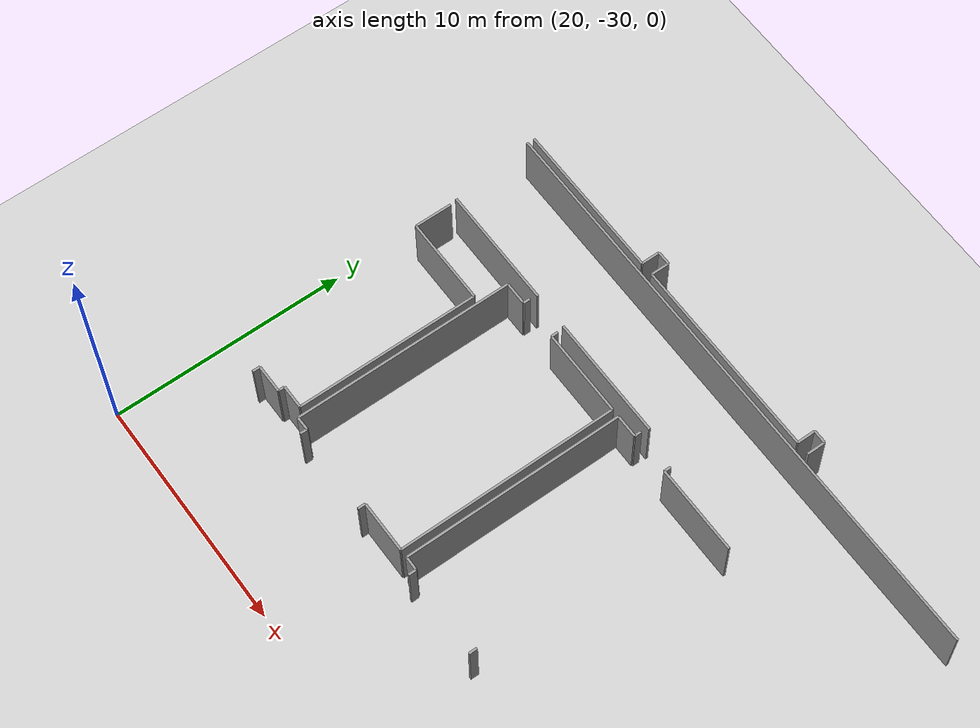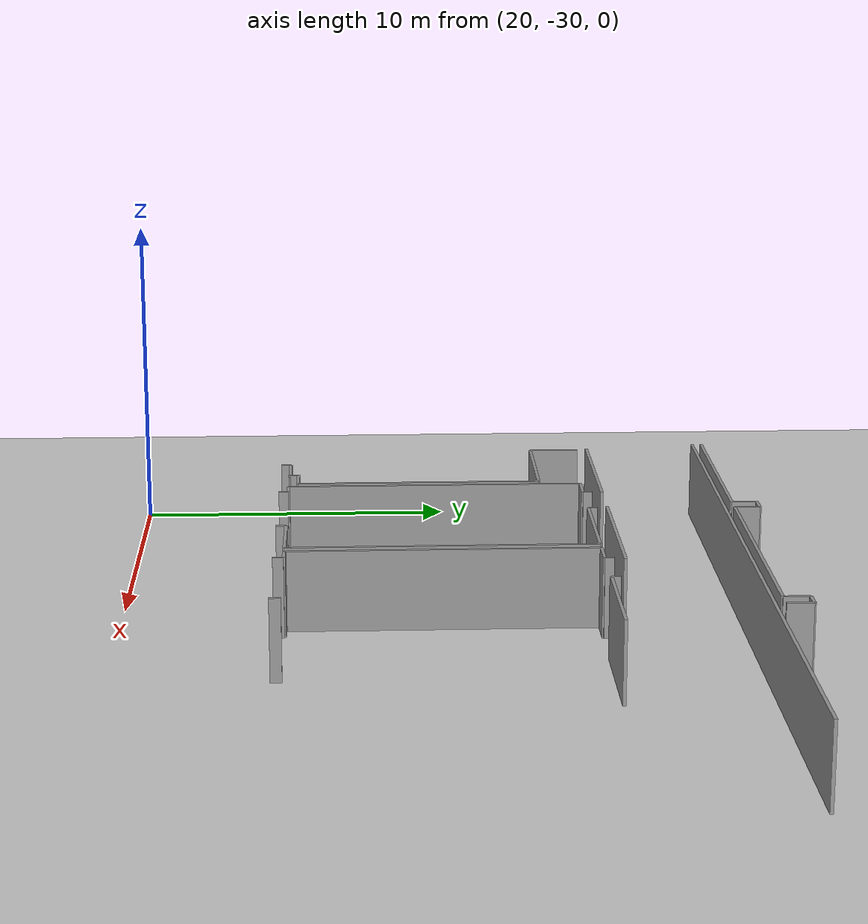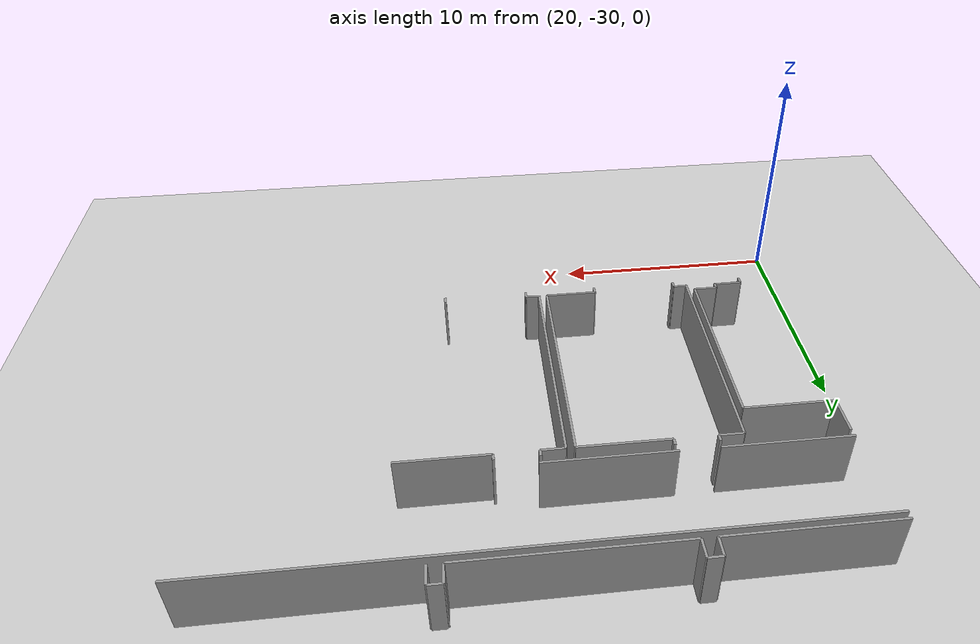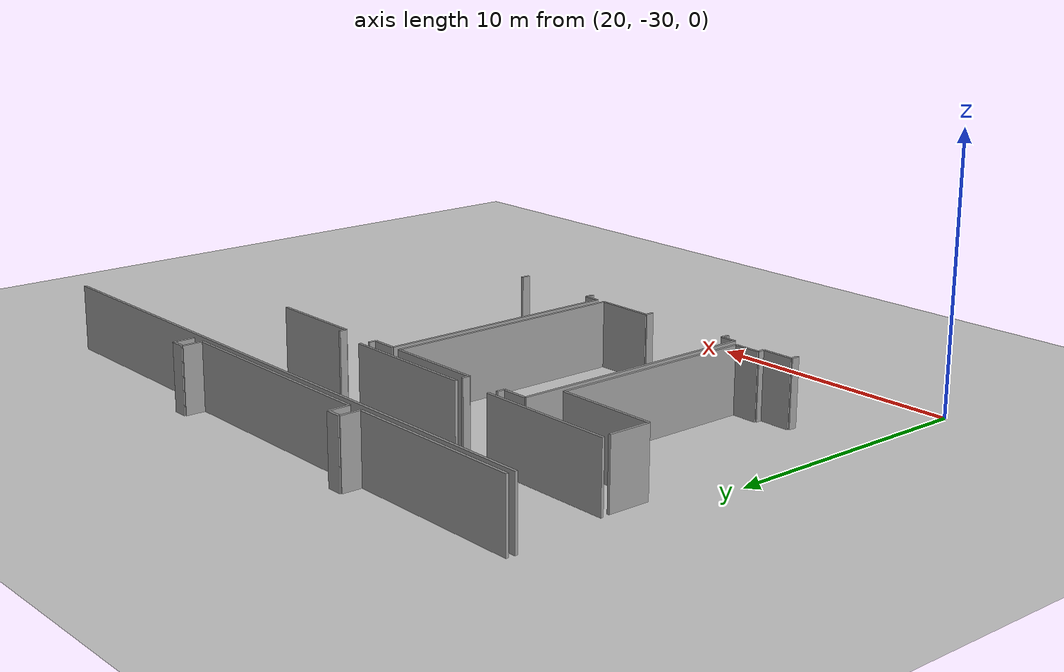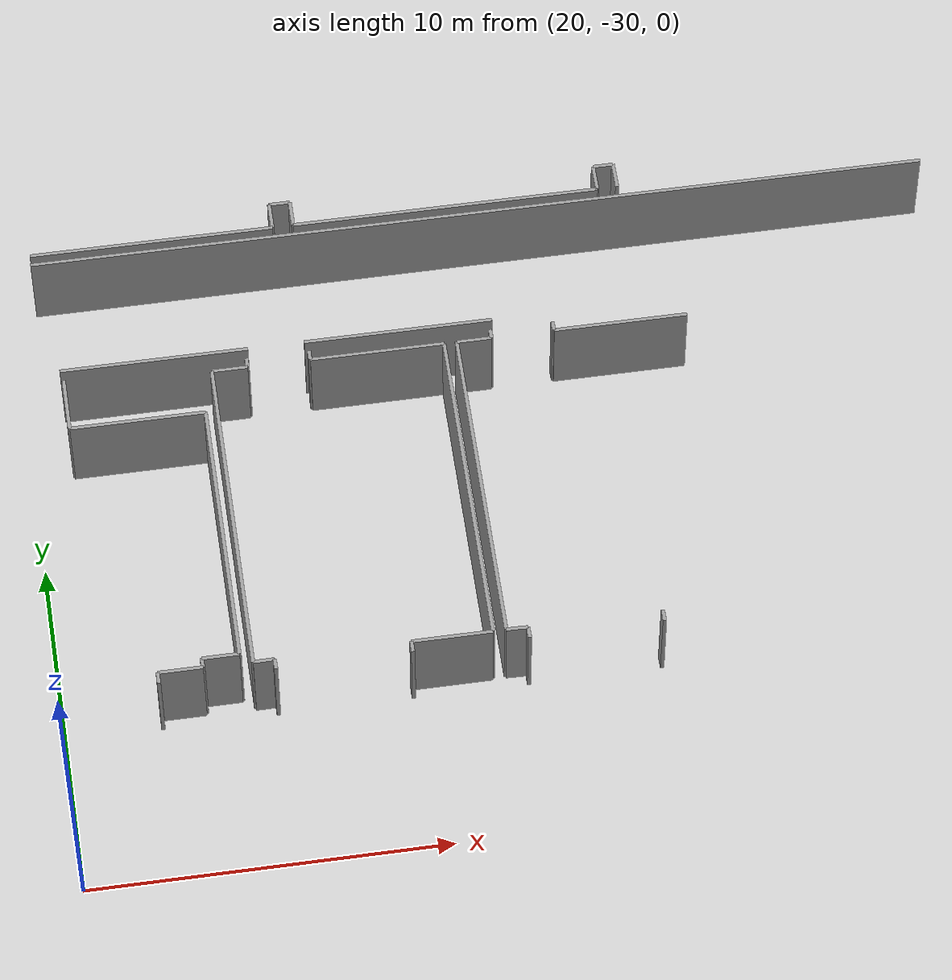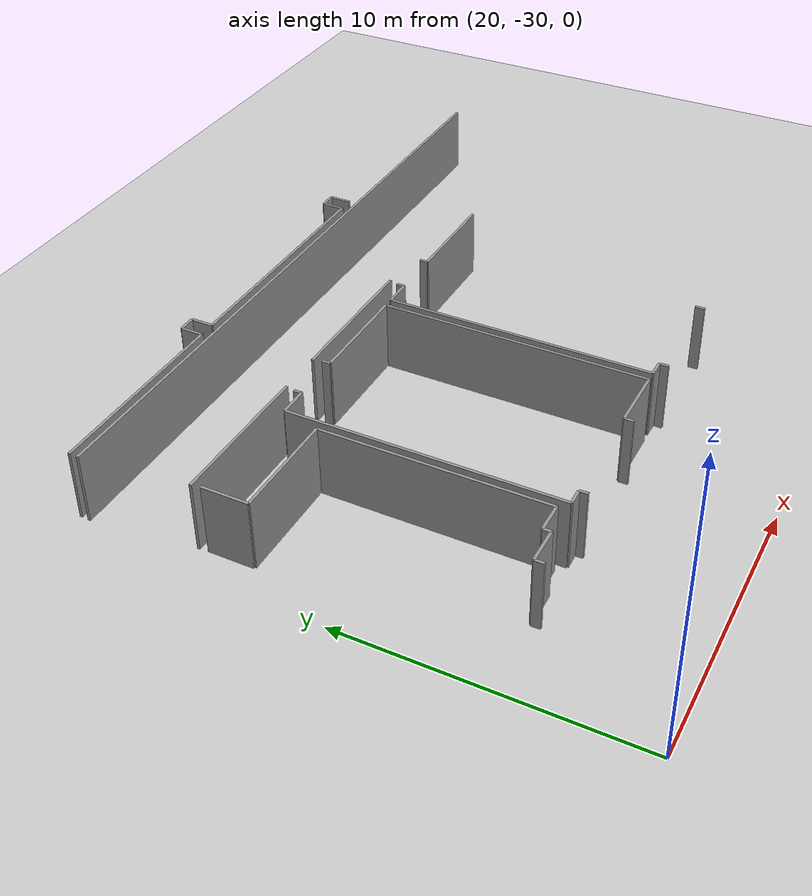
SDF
<sdf version="1.6">
 <world name="default">
  <model name="ground_plane">
   <static>1</static>
   <link name="link">
    <collision name="collision">
     <geometry><plane><normal>0 0 1</normal><size>100 100</size></plane></geometry>
     <surface><friction><ode><mu>100</mu><mu2>50</mu2></ode></friction></surface>
    </collision>
    <visual name="visual">
     <cast_shadows>0</cast_shadows>
     <geometry><plane><normal>0 0 1</normal><size>100 100</size></plane></geometry>
     <material>
      <script><uri>file://media/materials/scripts/gazebo.material</uri><name>Gazebo/Grey</name></script>
     </material>
    </visual>
   </link>
  </model>
  <model name="50045367">
   <static>1</static>
   <link name="Wall_291">
    <collision name="Wall_291_Collision">
     <geometry><box><size>0.785354946898 0.1 2.5</size></box></geometry>
     <pose>0.392677473449 0 1.25 0 0 0</pose>
    </collision>
    <visual name="Wall_291_Visual">
     <pose>0.392677473449 0 1.25 0 0 0</pose>
     <geometry><box><size>0.785354946898 0.1 2.5</size></box></geometry>
     <material>
      <script><uri>file://media/materials/scripts/gazebo.material</uri><name>Gazebo/Grey</name></script>
      <ambient>1 1 1 1</ambient>
     </material>
    </visual>
    <pose>90.4882107831 -36.7016870776 0 0 0 1.57079632679</pose>
   </link>
   <link name="Wall_292">
    <collision name="Wall_292_Collision">
     <geometry><box><size>0.566847908938 0.1 2.5</size></box></geometry>
     <pose>0.283423954469 0 1.25 0 0 0</pose>
    </collision>
    <visual name="Wall_292_Visual">
     <pose>0.283423954469 0 1.25 0 0 0</pose>
     <geometry><box><size>0.566847908938 0.1 2.5</size></box></geometry>
     <material>
      <script><uri>file://media/materials/scripts/gazebo.material</uri><name>Gazebo/Grey</name></script>
      <ambient>1 1 1 1</ambient>
     </material>
    </visual>
    <pose>90.4882107831 -35.9163321307 0 0 0 3.14159265359</pose>
   </link>
   <link name="Wall_293">
    <collision name="Wall_293_Collision">
     <geometry><box><size>0.787641648458 0.1 2.5</size></box></geometry>
     <pose>0.393820824229 0 1.25 0 0 0</pose>
    </collision>
    <visual name="Wall_293_Visual">
     <pose>0.393820824229 0 1.25 0 0 0</pose>
     <geometry><box><size>0.787641648458 0.1 2.5</size></box></geometry>
     <material>
      <script><uri>file://media/materials/scripts/gazebo.material</uri><name>Gazebo/Grey</name></script>
      <ambient>1 1 1 1</ambient>
     </material>
    </visual>
    <pose>89.9213628741 -35.9163321307 0 0 0 -1.57079632679</pose>
   </link>
   <link name="Wall_294">
    <collision name="Wall_294_Collision">
     <geometry><box><size>8.6606280807 0.1 2.5</size></box></geometry>
     <pose>4.33031404035 0 1.25 0 0 0</pose>
    </collision>
    <visual name="Wall_294_Visual">
     <pose>4.33031404035 0 1.25 0 0 0</pose>
     <geometry><box><size>8.6606280807 0.1 2.5</size></box></geometry>
     <material>
      <script><uri>file://media/materials/scripts/gazebo.material</uri><name>Gazebo/Grey</name></script>
      <ambient>1 1 1 1</ambient>
     </material>
    </visual>
    <pose>89.9213628741 -36.7039737792 0 0 0 3.14159265359</pose>
   </link>
   <link name="Wall_295">
    <collision name="Wall_295_Collision">
     <geometry><box><size>0.789039077189 0.1 2.5</size></box></geometry>
     <pose>0.394519538594 0 1.25 0 0 0</pose>
    </collision>
    <visual name="Wall_295_Visual">
     <pose>0.394519538594 0 1.25 0 0 0</pose>
     <geometry><box><size>0.789039077189 0.1 2.5</size></box></geometry>
     <material>
      <script><uri>file://media/materials/scripts/gazebo.material</uri><name>Gazebo/Grey</name></script>
      <ambient>1 1 1 1</ambient>
     </material>
    </visual>
    <pose>81.2607347934 -36.7039737792 0 0 0 1.57079632679</pose>
   </link>
   <link name="Wall_296">
    <collision name="Wall_296_Collision">
     <geometry><box><size>0.587301184003 0.1 2.5</size></box></geometry>
     <pose>0.293650592002 0 1.25 0 0 0</pose>
    </collision>
    <visual name="Wall_296_Visual">
     <pose>0.293650592002 0 1.25 0 0 0</pose>
     <geometry><box><size>0.587301184003 0.1 2.5</size></box></geometry>
     <material>
      <script><uri>file://media/materials/scripts/gazebo.material</uri><name>Gazebo/Grey</name></script>
      <ambient>1 1 1 1</ambient>
     </material>
    </visual>
    <pose>81.2607347934 -35.914934702 0 0 0 3.14159265359</pose>
   </link>
   <link name="Wall_297">
    <collision name="Wall_297_Collision">
     <geometry><box><size>0.795772142893 0.1 2.5</size></box></geometry>
     <pose>0.397886071447 0 1.25 0 0 0</pose>
    </collision>
    <visual name="Wall_297_Visual">
     <pose>0.397886071447 0 1.25 0 0 0</pose>
     <geometry><box><size>0.795772142893 0.1 2.5</size></box></geometry>
     <material>
      <script><uri>file://media/materials/scripts/gazebo.material</uri><name>Gazebo/Grey</name></script>
      <ambient>1 1 1 1</ambient>
     </material>
    </visual>
    <pose>80.6734336094 -35.914934702 0 0 0 -1.57079632679</pose>
   </link>
   <link name="Wall_298">
    <collision name="Wall_298_Collision">
     <geometry><box><size>6.84663854871 0.1 2.5</size></box></geometry>
     <pose>3.42331927435 0 1.25 0 0 0</pose>
    </collision>
    <visual name="Wall_298_Visual">
     <pose>3.42331927435 0 1.25 0 0 0</pose>
     <geometry><box><size>6.84663854871 0.1 2.5</size></box></geometry>
     <material>
      <script><uri>file://media/materials/scripts/gazebo.material</uri><name>Gazebo/Grey</name></script>
      <ambient>1 1 1 1</ambient>
     </material>
    </visual>
    <pose>80.6734336094 -36.7107068449 0 0 0 3.14159265359</pose>
   </link>
   <link name="Wall_427">
    <collision name="Wall_427_Collision">
     <geometry><box><size>1.60462930027 0.1 2.5</size></box></geometry>
     <pose>0.802314650135 0 1.25 0 0 0</pose>
    </collision>
    <visual name="Wall_427_Visual">
     <pose>0.802314650135 0 1.25 0 0 0</pose>
     <geometry><box><size>1.60462930027 0.1 2.5</size></box></geometry>
     <material>
      <script><uri>file://media/materials/scripts/gazebo.material</uri><name>Gazebo/Grey</name></script>
      <ambient>1 1 1 1</ambient>
     </material>
    </visual>
    <pose>74.3354591189 -41.0117384013 0 0 0 -1.57079632679</pose>
   </link>
   <link name="Wall_428">
    <collision name="Wall_428_Collision">
     <geometry><box><size>3.75463692261 0.1 2.5</size></box></geometry>
     <pose>1.8773184613 0 1.25 0 0 0</pose>
    </collision>
    <visual name="Wall_428_Visual">
     <pose>1.8773184613 0 1.25 0 0 0</pose>
     <geometry><box><size>3.75463692261 0.1 2.5</size></box></geometry>
     <material>
      <script><uri>file://media/materials/scripts/gazebo.material</uri><name>Gazebo/Grey</name></script>
      <ambient>1 1 1 1</ambient>
     </material>
    </visual>
    <pose>74.3354591189 -42.6163677016 0 0 0 0.0</pose>
   </link>
   <link name="Wall_429">
    <collision name="Wall_429_Collision">
     <geometry><box><size>7.806672087 0.1 2.5</size></box></geometry>
     <pose>3.9033360435 0 1.25 0 0 0</pose>
    </collision>
    <visual name="Wall_429_Visual">
     <pose>3.9033360435 0 1.25 0 0 0</pose>
     <geometry><box><size>7.806672087 0.1 2.5</size></box></geometry>
     <material>
      <script><uri>file://media/materials/scripts/gazebo.material</uri><name>Gazebo/Grey</name></script>
      <ambient>1 1 1 1</ambient>
     </material>
    </visual>
    <pose>78.0900960415 -42.6163677016 0 0 0 -1.57079632679</pose>
   </link>
   <link name="Wall_430">
    <collision name="Wall_430_Collision">
     <geometry><box><size>1.01059505056 0.1 2.5</size></box></geometry>
     <pose>0.505297525281 0 1.25 0 0 0</pose>
    </collision>
    <visual name="Wall_430_Visual">
     <pose>0.505297525281 0 1.25 0 0 0</pose>
     <geometry><box><size>1.01059505056 0.1 2.5</size></box></geometry>
     <material>
      <script><uri>file://media/materials/scripts/gazebo.material</uri><name>Gazebo/Grey</name></script>
      <ambient>1 1 1 1</ambient>
     </material>
    </visual>
    <pose>78.0900960415 -50.4230397886 0 0 0 3.14159265359</pose>
   </link>
   <link name="Wall_431">
    <collision name="Wall_431_Collision">
     <geometry><box><size>0.271482290767 0.1 2.5</size></box></geometry>
     <pose>0.135741145383 0 1.25 0 0 0</pose>
    </collision>
    <visual name="Wall_431_Visual">
     <pose>0.135741145383 0 1.25 0 0 0</pose>
     <geometry><box><size>0.271482290767 0.1 2.5</size></box></geometry>
     <material>
      <script><uri>file://media/materials/scripts/gazebo.material</uri><name>Gazebo/Grey</name></script>
      <ambient>1 1 1 1</ambient>
     </material>
    </visual>
    <pose>77.0795009909 -50.4230397886 0 0 0 -1.57079632679</pose>
   </link>
   <link name="Wall_432">
    <collision name="Wall_432_Collision">
     <geometry><box><size>1.21893897048 0.1 2.5</size></box></geometry>
     <pose>0.609469485238 0 1.25 0 0 0</pose>
    </collision>
    <visual name="Wall_432_Visual">
     <pose>0.609469485238 0 1.25 0 0 0</pose>
     <geometry><box><size>1.21893897048 0.1 2.5</size></box></geometry>
     <material>
      <script><uri>file://media/materials/scripts/gazebo.material</uri><name>Gazebo/Grey</name></script>
      <ambient>1 1 1 1</ambient>
     </material>
    </visual>
    <pose>77.0795009909 -50.6945220794 0 0 0 3.14159265359</pose>
   </link>
   <link name="Wall_433">
    <collision name="Wall_433_Collision">
     <geometry><box><size>0.322170842014 0.1 2.5</size></box></geometry>
     <pose>0.161085421007 0 1.25 0 0 0</pose>
    </collision>
    <visual name="Wall_433_Visual">
     <pose>0.161085421007 0 1.25 0 0 0</pose>
     <geometry><box><size>0.322170842014 0.1 2.5</size></box></geometry>
     <material>
      <script><uri>file://media/materials/scripts/gazebo.material</uri><name>Gazebo/Grey</name></script>
      <ambient>1 1 1 1</ambient>
     </material>
    </visual>
    <pose>75.8605620204 -50.6945220794 0 0 0 -1.57079632679</pose>
   </link>
   <link name="Wall_436">
    <collision name="Wall_436_Collision">
     <geometry><box><size>9.43251689618 0.1 2.5</size></box></geometry>
     <pose>4.71625844809 0 1.25 0 0 0</pose>
    </collision>
    <visual name="Wall_436_Visual">
     <pose>4.71625844809 0 1.25 0 0 0</pose>
     <geometry><box><size>9.43251689618 0.1 2.5</size></box></geometry>
     <material>
      <script><uri>file://media/materials/scripts/gazebo.material</uri><name>Gazebo/Grey</name></script>
      <ambient>1 1 1 1</ambient>
     </material>
    </visual>
    <pose>78.4173484425 -50.7281874079 0 0 0 1.57079632679</pose>
   </link>
   <link name="Wall_437">
    <collision name="Wall_437_Collision">
     <geometry><box><size>0.995096295543 0.1 2.5</size></box></geometry>
     <pose>0.497548147772 0 1.25 0 0 0</pose>
    </collision>
    <visual name="Wall_437_Visual">
     <pose>0.497548147772 0 1.25 0 0 0</pose>
     <geometry><box><size>0.995096295543 0.1 2.5</size></box></geometry>
     <material>
      <script><uri>file://media/materials/scripts/gazebo.material</uri><name>Gazebo/Grey</name></script>
      <ambient>1 1 1 1</ambient>
     </material>
    </visual>
    <pose>78.4173484425 -41.2956705117 0 0 0 0.0</pose>
   </link>
   <link name="Wall_438">
    <collision name="Wall_438_Collision">
     <geometry><box><size>0.28825143554 0.1 2.5</size></box></geometry>
     <pose>0.14412571777 0 1.25 0 0 0</pose>
    </collision>
    <visual name="Wall_438_Visual">
     <pose>0.14412571777 0 1.25 0 0 0</pose>
     <geometry><box><size>0.28825143554 0.1 2.5</size></box></geometry>
     <material>
      <script><uri>file://media/materials/scripts/gazebo.material</uri><name>Gazebo/Grey</name></script>
      <ambient>1 1 1 1</ambient>
     </material>
    </visual>
    <pose>79.412444738 -41.2956705117 0 0 0 1.57079632679</pose>
   </link>
   <link name="Wall_439">
    <collision name="Wall_439_Collision">
     <geometry><box><size>0.28825143554 0.1 2.5</size></box></geometry>
     <pose>0.14412571777 0 1.25 0 0 0</pose>
    </collision>
    <visual name="Wall_439_Visual">
     <pose>0.14412571777 0 1.25 0 0 0</pose>
     <geometry><box><size>0.28825143554 0.1 2.5</size></box></geometry>
     <material>
      <script><uri>file://media/materials/scripts/gazebo.material</uri><name>Gazebo/Grey</name></script>
      <ambient>1 1 1 1</ambient>
     </material>
    </visual>
    <pose>81.1607551197 -41.0074190762 0 0 0 -1.57079632679</pose>
   </link>
   <link name="Wall_440">
    <collision name="Wall_440_Collision">
     <geometry><box><size>3.73672442705 0.1 2.5</size></box></geometry>
     <pose>1.86836221353 0 1.25 0 0 0</pose>
    </collision>
    <visual name="Wall_440_Visual">
     <pose>1.86836221353 0 1.25 0 0 0</pose>
     <geometry><box><size>3.73672442705 0.1 2.5</size></box></geometry>
     <material>
      <script><uri>file://media/materials/scripts/gazebo.material</uri><name>Gazebo/Grey</name></script>
      <ambient>1 1 1 1</ambient>
     </material>
    </visual>
    <pose>81.1607551197 -41.2956705117 0 0 0 0.0</pose>
   </link>
   <link name="Wall_441">
    <collision name="Wall_441_Collision">
     <geometry><box><size>9.40418720463 0.1 2.5</size></box></geometry>
     <pose>4.70209360232 0 1.25 0 0 0</pose>
    </collision>
    <visual name="Wall_441_Visual">
     <pose>4.70209360232 0 1.25 0 0 0</pose>
     <geometry><box><size>9.40418720463 0.1 2.5</size></box></geometry>
     <material>
      <script><uri>file://media/materials/scripts/gazebo.material</uri><name>Gazebo/Grey</name></script>
      <ambient>1 1 1 1</ambient>
     </material>
    </visual>
    <pose>84.8974795467 -41.2956705117 0 0 0 -1.57079632679</pose>
   </link>
   <link name="Wall_442">
    <collision name="Wall_442_Collision">
     <geometry><box><size>2.20933482392 0.1 2.5</size></box></geometry>
     <pose>1.10466741196 0 1.25 0 0 0</pose>
    </collision>
    <visual name="Wall_442_Visual">
     <pose>1.10466741196 0 1.25 0 0 0</pose>
     <geometry><box><size>2.20933482392 0.1 2.5</size></box></geometry>
     <material>
      <script><uri>file://media/materials/scripts/gazebo.material</uri><name>Gazebo/Grey</name></script>
      <ambient>1 1 1 1</ambient>
     </material>
    </visual>
    <pose>84.8974795467 -50.6998577163 0 0 0 3.14159265359</pose>
   </link>
   <link name="Wall_443">
    <collision name="Wall_443_Collision">
     <geometry><box><size>0.316962244016 0.1 2.5</size></box></geometry>
     <pose>0.158481122008 0 1.25 0 0 0</pose>
    </collision>
    <visual name="Wall_443_Visual">
     <pose>0.158481122008 0 1.25 0 0 0</pose>
     <geometry><box><size>0.316962244016 0.1 2.5</size></box></geometry>
     <material>
      <script><uri>file://media/materials/scripts/gazebo.material</uri><name>Gazebo/Grey</name></script>
      <ambient>1 1 1 1</ambient>
     </material>
    </visual>
    <pose>82.6881447228 -50.6998577163 0 0 0 -1.57079632679</pose>
   </link>
   <link name="Wall_444">
    <collision name="Wall_444_Collision">
     <geometry><box><size>0.297017124854 0.1 2.5</size></box></geometry>
     <pose>0.148508562427 0 1.25 0 0 0</pose>
    </collision>
    <visual name="Wall_444_Visual">
     <pose>0.148508562427 0 1.25 0 0 0</pose>
     <geometry><box><size>0.297017124854 0.1 2.5</size></box></geometry>
     <material>
      <script><uri>file://media/materials/scripts/gazebo.material</uri><name>Gazebo/Grey</name></script>
      <ambient>1 1 1 1</ambient>
     </material>
    </visual>
    <pose>78.9995680675 -51.0168199604 0 0 0 1.57079632679</pose>
   </link>
   <link name="Wall_445">
    <collision name="Wall_445_Collision">
     <geometry><box><size>0.582279995163 0.1 2.5</size></box></geometry>
     <pose>0.291139997582 0 1.25 0 0 0</pose>
    </collision>
    <visual name="Wall_445_Visual">
     <pose>0.291139997582 0 1.25 0 0 0</pose>
     <geometry><box><size>0.582279995163 0.1 2.5</size></box></geometry>
     <material>
      <script><uri>file://media/materials/scripts/gazebo.material</uri><name>Gazebo/Grey</name></script>
      <ambient>1 1 1 1</ambient>
     </material>
    </visual>
    <pose>78.9995680675 -50.7198028355 0 0 0 -3.12719260166</pose>
   </link>
   <link name="Wall_446">
    <collision name="Wall_446_Collision">
     <geometry><box><size>9.39288073581 0.1 2.5</size></box></geometry>
     <pose>4.6964403679 0 1.25 0 0 0</pose>
    </collision>
    <visual name="Wall_446_Visual">
     <pose>4.6964403679 0 1.25 0 0 0</pose>
     <geometry><box><size>9.39288073581 0.1 2.5</size></box></geometry>
     <material>
      <script><uri>file://media/materials/scripts/gazebo.material</uri><name>Gazebo/Grey</name></script>
      <ambient>1 1 1 1</ambient>
     </material>
    </visual>
    <pose>85.2529346003 -50.6902027542 0 0 0 1.57079632679</pose>
   </link>
   <link name="Wall_447">
    <collision name="Wall_447_Collision">
     <geometry><box><size>0.973880786625 0.1 2.5</size></box></geometry>
     <pose>0.486940393313 0 1.25 0 0 0</pose>
    </collision>
    <visual name="Wall_447_Visual">
     <pose>0.486940393313 0 1.25 0 0 0</pose>
     <geometry><box><size>0.973880786625 0.1 2.5</size></box></geometry>
     <material>
      <script><uri>file://media/materials/scripts/gazebo.material</uri><name>Gazebo/Grey</name></script>
      <ambient>1 1 1 1</ambient>
     </material>
    </visual>
    <pose>85.2529346003 -41.2973220184 0 0 0 0.0</pose>
   </link>
   <link name="Wall_448">
    <collision name="Wall_448_Collision">
     <geometry><box><size>0.284059149347 0.1 2.5</size></box></geometry>
     <pose>0.142029574674 0 1.25 0 0 0</pose>
    </collision>
    <visual name="Wall_448_Visual">
     <pose>0.142029574674 0 1.25 0 0 0</pose>
     <geometry><box><size>0.284059149347 0.1 2.5</size></box></geometry>
     <material>
      <script><uri>file://media/materials/scripts/gazebo.material</uri><name>Gazebo/Grey</name></script>
      <ambient>1 1 1 1</ambient>
     </material>
    </visual>
    <pose>86.226815387 -41.2973220184 0 0 0 1.57079632679</pose>
   </link>
   <link name="Wall_449">
    <collision name="Wall_449_Collision">
     <geometry><box><size>0.276055693887 0.1 2.5</size></box></geometry>
     <pose>0.138027846943 0 1.25 0 0 0</pose>
    </collision>
    <visual name="Wall_449_Visual">
     <pose>0.138027846943 0 1.25 0 0 0</pose>
     <geometry><box><size>0.276055693887 0.1 2.5</size></box></geometry>
     <material>
      <script><uri>file://media/materials/scripts/gazebo.material</uri><name>Gazebo/Grey</name></script>
      <ambient>1 1 1 1</ambient>
     </material>
    </visual>
    <pose>87.9817317953 -41.013262869 0 0 0 -1.57079632679</pose>
   </link>
   <link name="Wall_450">
    <collision name="Wall_450_Collision">
     <geometry><box><size>3.74485492149 0.1 2.5</size></box></geometry>
     <pose>1.87242746074 0 1.25 0 0 0</pose>
    </collision>
    <visual name="Wall_450_Visual">
     <pose>1.87242746074 0 1.25 0 0 0</pose>
     <geometry><box><size>3.74485492149 0.1 2.5</size></box></geometry>
     <material>
      <script><uri>file://media/materials/scripts/gazebo.material</uri><name>Gazebo/Grey</name></script>
      <ambient>1 1 1 1</ambient>
     </material>
    </visual>
    <pose>87.9817317953 -41.2893185629 0 0 0 0.0</pose>
   </link>
   <link name="Wall_453">
    <collision name="Wall_453_Collision">
     <geometry><box><size>0.342370039128 0.1 2.5</size></box></geometry>
     <pose>0.171185019564 0 1.25 0 0 0</pose>
    </collision>
    <visual name="Wall_453_Visual">
     <pose>0.171185019564 0 1.25 0 0 0</pose>
     <geometry><box><size>0.342370039128 0.1 2.5</size></box></geometry>
     <material>
      <script><uri>file://media/materials/scripts/gazebo.material</uri><name>Gazebo/Grey</name></script>
      <ambient>1 1 1 1</ambient>
     </material>
    </visual>
    <pose>89.501244982 -50.686137507 0 0 0 -1.57079632679</pose>
   </link>
   <link name="Wall_454">
    <collision name="Wall_454_Collision">
     <geometry><box><size>0.32572793333 0.1 2.5</size></box></geometry>
     <pose>0.162863966665 0 1.25 0 0 0</pose>
    </collision>
    <visual name="Wall_454_Visual">
     <pose>0.162863966665 0 1.25 0 0 0</pose>
     <geometry><box><size>0.32572793333 0.1 2.5</size></box></geometry>
     <material>
      <script><uri>file://media/materials/scripts/gazebo.material</uri><name>Gazebo/Grey</name></script>
      <ambient>1 1 1 1</ambient>
     </material>
    </visual>
    <pose>85.8426495249 -51.0285075461 0 0 0 1.57079632679</pose>
   </link>
   <link name="Wall_455">
    <collision name="Wall_455_Collision">
     <geometry><box><size>0.589849022713 0.1 2.5</size></box></geometry>
     <pose>0.294924511357 0 1.25 0 0 0</pose>
    </collision>
    <visual name="Wall_455_Visual">
     <pose>0.294924511357 0 1.25 0 0 0</pose>
     <geometry><box><size>0.589849022713 0.1 2.5</size></box></geometry>
     <material>
      <script><uri>file://media/materials/scripts/gazebo.material</uri><name>Gazebo/Grey</name></script>
      <ambient>1 1 1 1</ambient>
     </material>
    </visual>
    <pose>85.8426495249 -50.7027796128 0 0 0 3.12026887196</pose>
   </link>
   <link name="Wall_471">
    <collision name="Wall_471_Collision">
     <geometry><box><size>25.3178515168 0.1 2.5</size></box></geometry>
     <pose>12.6589257584 0 1.25 0 0 0</pose>
    </collision>
    <visual name="Wall_471_Visual">
     <pose>12.6589257584 0 1.25 0 0 0</pose>
     <geometry><box><size>25.3178515168 0.1 2.5</size></box></geometry>
     <material>
      <script><uri>file://media/materials/scripts/gazebo.material</uri><name>Gazebo/Grey</name></script>
      <ambient>1 1 1 1</ambient>
     </material>
    </visual>
    <pose>73.8106611108 -37.0203008283 0 0 0 0.0</pose>
   </link>
   <link name="Wall_476">
    <collision name="Wall_476_Collision">
     <geometry><box><size>5.26411403018 0.1 2.5</size></box></geometry>
     <pose>2.63205701509 0 1.25 0 0 0</pose>
    </collision>
    <visual name="Wall_476_Visual">
     <pose>2.63205701509 0 1.25 0 0 0</pose>
     <geometry><box><size>5.26411403018 0.1 2.5</size></box></geometry>
     <material>
      <script><uri>file://media/materials/scripts/gazebo.material</uri><name>Gazebo/Grey</name></script>
      <ambient>1 1 1 1</ambient>
     </material>
    </visual>
    <pose>86.3288276843 -40.6961735861 0 0 0 3.14159265359</pose>
   </link>
   <link name="Wall_477">
    <collision name="Wall_477_Collision">
     <geometry><box><size>5.23819807917 0.1 2.5</size></box></geometry>
     <pose>2.61909903959 0 1.25 0 0 0</pose>
    </collision>
    <visual name="Wall_477_Visual">
     <pose>2.61909903959 0 1.25 0 0 0</pose>
     <geometry><box><size>5.23819807917 0.1 2.5</size></box></geometry>
     <material>
      <script><uri>file://media/materials/scripts/gazebo.material</uri><name>Gazebo/Grey</name></script>
      <ambient>1 1 1 1</ambient>
     </material>
    </visual>
    <pose>79.4943848773 -40.6961735861 0 0 0 3.14159265359</pose>
   </link>
   <pose>-53.2 25.6193734438 0 0 0 0</pose>
  </model>
 </world>
</sdf>
